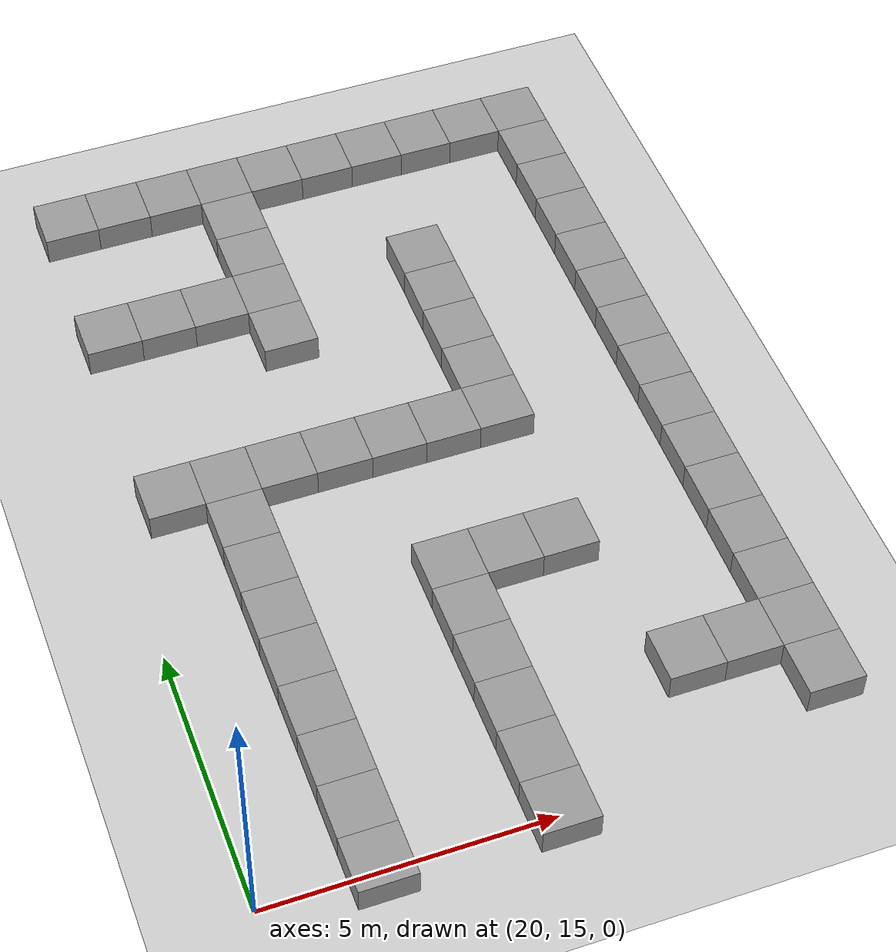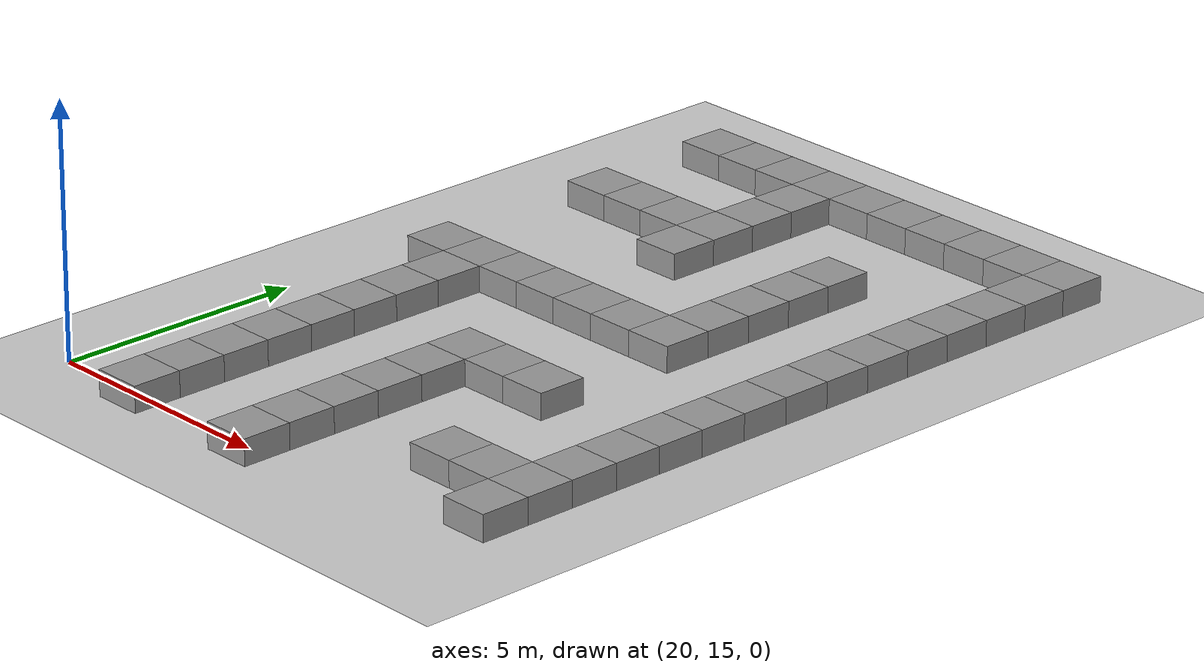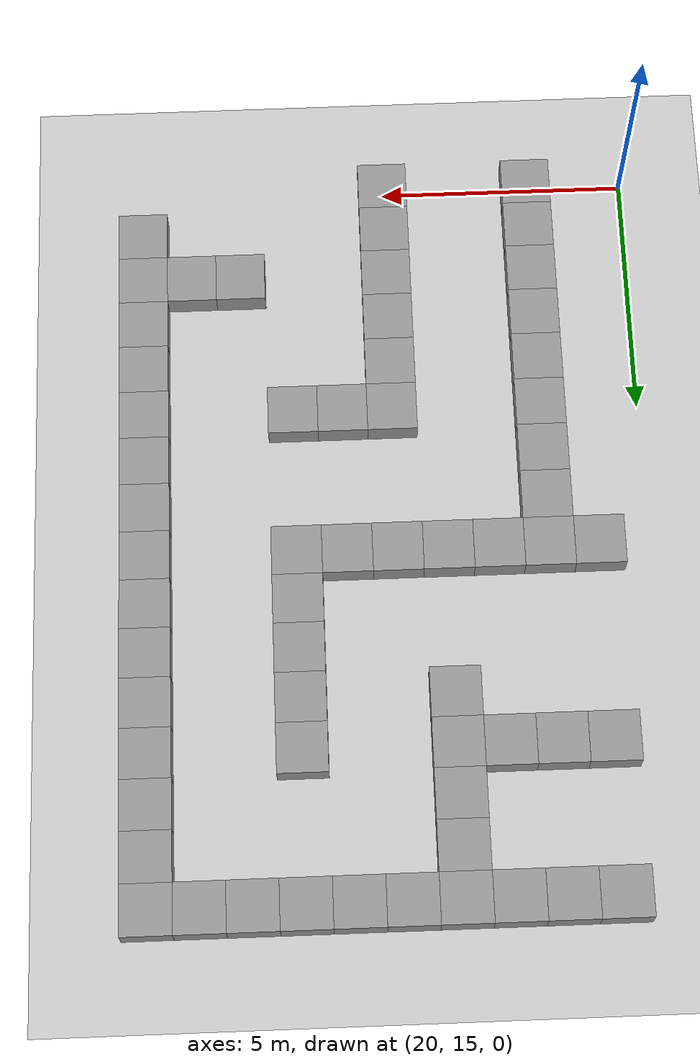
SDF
<sdf version="1.4">
 <world name="default">
  <model name="ground_plane">
   <static>1</static>
   <link name="link">
    <collision name="collision">
     <geometry><plane><normal>0 0 1</normal><size>100 100</size></plane></geometry>
     <surface><friction><ode><mu>100</mu><mu2>50</mu2></ode></friction></surface>
    </collision>
    <visual name="visual">
     <cast_shadows>0</cast_shadows>
     <geometry><plane><normal>0 0 1</normal><size>100 100</size></plane></geometry>
     <material>
      <script><uri>file://media/materials/scripts/gazebo.material</uri><name>Gazebo/Grey</name></script>
     </material>
    </visual>
    <velocity_decay><linear>0</linear><angular>0</angular></velocity_decay>
   </link>
  </model>
  <model name="unit_box_45">
   <pose>30 16 0 0 -0 0</pose>
   <link name="link">
    <inertial>
     <mass>1</mass>
     <inertia><ixx>1</ixx><ixy>0</ixy><ixz>0</ixz><iyy>1</iyy><iyz>0</iyz><izz>1</izz></inertia>
    </inertial>
    <collision name="collision"><geometry><box><size>1 1 1</size></box></geometry></collision>
    <visual name="visual">
     <geometry><box><size>1 1 1</size></box></geometry>
     <material>
      <script><uri>file://media/materials/scripts/gazebo.material</uri><name>Gazebo/Grey</name></script>
     </material>
    </visual>
    <velocity_decay><linear>0</linear><angular>0</angular></velocity_decay>
   </link>
   <static>1</static>
  </model>
  <model name="unit_box_46">
   <pose>30 17 0 0 -0 0</pose>
   <link name="link">
    <inertial>
     <mass>1</mass>
     <inertia><ixx>1</ixx><ixy>0</ixy><ixz>0</ixz><iyy>1</iyy><iyz>0</iyz><izz>1</izz></inertia>
    </inertial>
    <collision name="collision"><geometry><box><size>1 1 1</size></box></geometry></collision>
    <visual name="visual">
     <geometry><box><size>1 1 1</size></box></geometry>
     <material>
      <script><uri>file://media/materials/scripts/gazebo.material</uri><name>Gazebo/Grey</name></script>
     </material>
    </visual>
    <velocity_decay><linear>0</linear><angular>0</angular></velocity_decay>
   </link>
   <static>1</static>
  </model>
  <model name="unit_box_47">
   <pose>30 18 0 0 -0 0</pose>
   <link name="link">
    <inertial>
     <mass>1</mass>
     <inertia><ixx>1</ixx><ixy>0</ixy><ixz>0</ixz><iyy>1</iyy><iyz>0</iyz><izz>1</izz></inertia>
    </inertial>
    <collision name="collision"><geometry><box><size>1 1 1</size></box></geometry></collision>
    <visual name="visual">
     <geometry><box><size>1 1 1</size></box></geometry>
     <material>
      <script><uri>file://media/materials/scripts/gazebo.material</uri><name>Gazebo/Grey</name></script>
     </material>
    </visual>
    <velocity_decay><linear>0</linear><angular>0</angular></velocity_decay>
   </link>
   <static>1</static>
  </model>
  <model name="unit_box_48">
   <pose>30 19 0 0 -0 0</pose>
   <link name="link">
    <inertial>
     <mass>1</mass>
     <inertia><ixx>1</ixx><ixy>0</ixy><ixz>0</ixz><iyy>1</iyy><iyz>0</iyz><izz>1</izz></inertia>
    </inertial>
    <collision name="collision"><geometry><box><size>1 1 1</size></box></geometry></collision>
    <visual name="visual">
     <geometry><box><size>1 1 1</size></box></geometry>
     <material>
      <script><uri>file://media/materials/scripts/gazebo.material</uri><name>Gazebo/Grey</name></script>
     </material>
    </visual>
    <velocity_decay><linear>0</linear><angular>0</angular></velocity_decay>
   </link>
   <static>1</static>
  </model>
  <model name="unit_box_49">
   <pose>30 20 0 0 -0 0</pose>
   <link name="link">
    <inertial>
     <mass>1</mass>
     <inertia><ixx>1</ixx><ixy>0</ixy><ixz>0</ixz><iyy>1</iyy><iyz>0</iyz><izz>1</izz></inertia>
    </inertial>
    <collision name="collision"><geometry><box><size>1 1 1</size></box></geometry></collision>
    <visual name="visual">
     <geometry><box><size>1 1 1</size></box></geometry>
     <material>
      <script><uri>file://media/materials/scripts/gazebo.material</uri><name>Gazebo/Grey</name></script>
     </material>
    </visual>
    <velocity_decay><linear>0</linear><angular>0</angular></velocity_decay>
   </link>
   <static>1</static>
  </model>
  <model name="unit_box_50">
   <pose>30 21 0 0 -0 0</pose>
   <link name="link">
    <inertial>
     <mass>1</mass>
     <inertia><ixx>1</ixx><ixy>0</ixy><ixz>0</ixz><iyy>1</iyy><iyz>0</iyz><izz>1</izz></inertia>
    </inertial>
    <collision name="collision"><geometry><box><size>1 1 1</size></box></geometry></collision>
    <visual name="visual">
     <geometry><box><size>1 1 1</size></box></geometry>
     <material>
      <script><uri>file://media/materials/scripts/gazebo.material</uri><name>Gazebo/Grey</name></script>
     </material>
    </visual>
    <velocity_decay><linear>0</linear><angular>0</angular></velocity_decay>
   </link>
   <static>1</static>
  </model>
  <model name="unit_box_51">
   <pose>30 22 0 0 -0 0</pose>
   <link name="link">
    <inertial>
     <mass>1</mass>
     <inertia><ixx>1</ixx><ixy>0</ixy><ixz>0</ixz><iyy>1</iyy><iyz>0</iyz><izz>1</izz></inertia>
    </inertial>
    <collision name="collision"><geometry><box><size>1 1 1</size></box></geometry></collision>
    <visual name="visual">
     <geometry><box><size>1 1 1</size></box></geometry>
     <material>
      <script><uri>file://media/materials/scripts/gazebo.material</uri><name>Gazebo/Grey</name></script>
     </material>
    </visual>
    <velocity_decay><linear>0</linear><angular>0</angular></velocity_decay>
   </link>
   <static>1</static>
  </model>
  <model name="unit_box_52">
   <pose>30 23 0 0 -0 0</pose>
   <link name="link">
    <inertial>
     <mass>1</mass>
     <inertia><ixx>1</ixx><ixy>0</ixy><ixz>0</ixz><iyy>1</iyy><iyz>0</iyz><izz>1</izz></inertia>
    </inertial>
    <collision name="collision"><geometry><box><size>1 1 1</size></box></geometry></collision>
    <visual name="visual">
     <geometry><box><size>1 1 1</size></box></geometry>
     <material>
      <script><uri>file://media/materials/scripts/gazebo.material</uri><name>Gazebo/Grey</name></script>
     </material>
    </visual>
    <velocity_decay><linear>0</linear><angular>0</angular></velocity_decay>
   </link>
   <static>1</static>
  </model>
  <model name="unit_box_53">
   <pose>30 24 0 0 -0 0</pose>
   <link name="link">
    <inertial>
     <mass>1</mass>
     <inertia><ixx>1</ixx><ixy>0</ixy><ixz>0</ixz><iyy>1</iyy><iyz>0</iyz><izz>1</izz></inertia>
    </inertial>
    <collision name="collision"><geometry><box><size>1 1 1</size></box></geometry></collision>
    <visual name="visual">
     <geometry><box><size>1 1 1</size></box></geometry>
     <material>
      <script><uri>file://media/materials/scripts/gazebo.material</uri><name>Gazebo/Grey</name></script>
     </material>
    </visual>
    <velocity_decay><linear>0</linear><angular>0</angular></velocity_decay>
   </link>
   <static>1</static>
  </model>
  <model name="unit_box_54">
   <pose>30 25 0 0 -0 0</pose>
   <link name="link">
    <inertial>
     <mass>1</mass>
     <inertia><ixx>1</ixx><ixy>0</ixy><ixz>0</ixz><iyy>1</iyy><iyz>0</iyz><izz>1</izz></inertia>
    </inertial>
    <collision name="collision"><geometry><box><size>1 1 1</size></box></geometry></collision>
    <visual name="visual">
     <geometry><box><size>1 1 1</size></box></geometry>
     <material>
      <script><uri>file://media/materials/scripts/gazebo.material</uri><name>Gazebo/Grey</name></script>
     </material>
    </visual>
    <velocity_decay><linear>0</linear><angular>0</angular></velocity_decay>
   </link>
   <static>1</static>
  </model>
  <model name="unit_box_55">
   <pose>30 26 0 0 -0 0</pose>
   <link name="link">
    <inertial>
     <mass>1</mass>
     <inertia><ixx>1</ixx><ixy>0</ixy><ixz>0</ixz><iyy>1</iyy><iyz>0</iyz><izz>1</izz></inertia>
    </inertial>
    <collision name="collision"><geometry><box><size>1 1 1</size></box></geometry></collision>
    <visual name="visual">
     <geometry><box><size>1 1 1</size></box></geometry>
     <material>
      <script><uri>file://media/materials/scripts/gazebo.material</uri><name>Gazebo/Grey</name></script>
     </material>
    </visual>
    <velocity_decay><linear>0</linear><angular>0</angular></velocity_decay>
   </link>
   <static>1</static>
  </model>
  <model name="unit_box_56">
   <pose>30 27 0 0 -0 0</pose>
   <link name="link">
    <inertial>
     <mass>1</mass>
     <inertia><ixx>1</ixx><ixy>0</ixy><ixz>0</ixz><iyy>1</iyy><iyz>0</iyz><izz>1</izz></inertia>
    </inertial>
    <collision name="collision"><geometry><box><size>1 1 1</size></box></geometry></collision>
    <visual name="visual">
     <geometry><box><size>1 1 1</size></box></geometry>
     <material>
      <script><uri>file://media/materials/scripts/gazebo.material</uri><name>Gazebo/Grey</name></script>
     </material>
    </visual>
    <velocity_decay><linear>0</linear><angular>0</angular></velocity_decay>
   </link>
   <static>1</static>
  </model>
  <model name="unit_box_57">
   <pose>30 28 0 0 -0 0</pose>
   <link name="link">
    <inertial>
     <mass>1</mass>
     <inertia><ixx>1</ixx><ixy>0</ixy><ixz>0</ixz><iyy>1</iyy><iyz>0</iyz><izz>1</izz></inertia>
    </inertial>
    <collision name="collision"><geometry><box><size>1 1 1</size></box></geometry></collision>
    <visual name="visual">
     <geometry><box><size>1 1 1</size></box></geometry>
     <material>
      <script><uri>file://media/materials/scripts/gazebo.material</uri><name>Gazebo/Grey</name></script>
     </material>
    </visual>
    <velocity_decay><linear>0</linear><angular>0</angular></velocity_decay>
   </link>
   <static>1</static>
  </model>
  <model name="unit_box_58">
   <pose>30 29 0 0 -0 0</pose>
   <link name="link">
    <inertial>
     <mass>1</mass>
     <inertia><ixx>1</ixx><ixy>0</ixy><ixz>0</ixz><iyy>1</iyy><iyz>0</iyz><izz>1</izz></inertia>
    </inertial>
    <collision name="collision"><geometry><box><size>1 1 1</size></box></geometry></collision>
    <visual name="visual">
     <geometry><box><size>1 1 1</size></box></geometry>
     <material>
      <script><uri>file://media/materials/scripts/gazebo.material</uri><name>Gazebo/Grey</name></script>
     </material>
    </visual>
    <velocity_decay><linear>0</linear><angular>0</angular></velocity_decay>
   </link>
   <static>1</static>
  </model>
  <model name="unit_box_59">
   <pose>30 30 0 0 -0 0</pose>
   <link name="link">
    <inertial>
     <mass>1</mass>
     <inertia><ixx>1</ixx><ixy>0</ixy><ixz>0</ixz><iyy>1</iyy><iyz>0</iyz><izz>1</izz></inertia>
    </inertial>
    <collision name="collision"><geometry><box><size>1 1 1</size></box></geometry></collision>
    <visual name="visual">
     <geometry><box><size>1 1 1</size></box></geometry>
     <material>
      <script><uri>file://media/materials/scripts/gazebo.material</uri><name>Gazebo/Grey</name></script>
     </material>
    </visual>
    <velocity_decay><linear>0</linear><angular>0</angular></velocity_decay>
   </link>
   <static>1</static>
  </model>
  <model name="unit_box_78">
   <pose>21 30 0 0 -0 0</pose>
   <link name="link">
    <inertial>
     <mass>1</mass>
     <inertia><ixx>1</ixx><ixy>0</ixy><ixz>0</ixz><iyy>1</iyy><iyz>0</iyz><izz>1</izz></inertia>
    </inertial>
    <collision name="collision"><geometry><box><size>1 1 1</size></box></geometry></collision>
    <visual name="visual">
     <geometry><box><size>1 1 1</size></box></geometry>
     <material>
      <script><uri>file://media/materials/scripts/gazebo.material</uri><name>Gazebo/Grey</name></script>
     </material>
    </visual>
    <velocity_decay><linear>0</linear><angular>0</angular></velocity_decay>
   </link>
   <static>1</static>
  </model>
  <model name="unit_box_79">
   <pose>22 30 0 0 -0 0</pose>
   <link name="link">
    <inertial>
     <mass>1</mass>
     <inertia><ixx>1</ixx><ixy>0</ixy><ixz>0</ixz><iyy>1</iyy><iyz>0</iyz><izz>1</izz></inertia>
    </inertial>
    <collision name="collision"><geometry><box><size>1 1 1</size></box></geometry></collision>
    <visual name="visual">
     <geometry><box><size>1 1 1</size></box></geometry>
     <material>
      <script><uri>file://media/materials/scripts/gazebo.material</uri><name>Gazebo/Grey</name></script>
     </material>
    </visual>
    <velocity_decay><linear>0</linear><angular>0</angular></velocity_decay>
   </link>
   <static>1</static>
  </model>
  <model name="unit_box_80">
   <pose>23 30 0 0 -0 0</pose>
   <link name="link">
    <inertial>
     <mass>1</mass>
     <inertia><ixx>1</ixx><ixy>0</ixy><ixz>0</ixz><iyy>1</iyy><iyz>0</iyz><izz>1</izz></inertia>
    </inertial>
    <collision name="collision"><geometry><box><size>1 1 1</size></box></geometry></collision>
    <visual name="visual">
     <geometry><box><size>1 1 1</size></box></geometry>
     <material>
      <script><uri>file://media/materials/scripts/gazebo.material</uri><name>Gazebo/Grey</name></script>
     </material>
    </visual>
    <velocity_decay><linear>0</linear><angular>0</angular></velocity_decay>
   </link>
   <static>1</static>
  </model>
  <model name="unit_box_81">
   <pose>24 30 0 0 -0 0</pose>
   <link name="link">
    <inertial>
     <mass>1</mass>
     <inertia><ixx>1</ixx><ixy>0</ixy><ixz>0</ixz><iyy>1</iyy><iyz>0</iyz><izz>1</izz></inertia>
    </inertial>
    <collision name="collision"><geometry><box><size>1 1 1</size></box></geometry></collision>
    <visual name="visual">
     <geometry><box><size>1 1 1</size></box></geometry>
     <material>
      <script><uri>file://media/materials/scripts/gazebo.material</uri><name>Gazebo/Grey</name></script>
     </material>
    </visual>
    <velocity_decay><linear>0</linear><angular>0</angular></velocity_decay>
   </link>
   <static>1</static>
  </model>
  <model name="unit_box_82">
   <pose>25 30 0 0 -0 0</pose>
   <link name="link">
    <inertial>
     <mass>1</mass>
     <inertia><ixx>1</ixx><ixy>0</ixy><ixz>0</ixz><iyy>1</iyy><iyz>0</iyz><izz>1</izz></inertia>
    </inertial>
    <collision name="collision"><geometry><box><size>1 1 1</size></box></geometry></collision>
    <visual name="visual">
     <geometry><box><size>1 1 1</size></box></geometry>
     <material>
      <script><uri>file://media/materials/scripts/gazebo.material</uri><name>Gazebo/Grey</name></script>
     </material>
    </visual>
    <velocity_decay><linear>0</linear><angular>0</angular></velocity_decay>
   </link>
   <static>1</static>
  </model>
  <model name="unit_box_83">
   <pose>26 30 0 0 -0 0</pose>
   <link name="link">
    <inertial>
     <mass>1</mass>
     <inertia><ixx>1</ixx><ixy>0</ixy><ixz>0</ixz><iyy>1</iyy><iyz>0</iyz><izz>1</izz></inertia>
    </inertial>
    <collision name="collision"><geometry><box><size>1 1 1</size></box></geometry></collision>
    <visual name="visual">
     <geometry><box><size>1 1 1</size></box></geometry>
     <material>
      <script><uri>file://media/materials/scripts/gazebo.material</uri><name>Gazebo/Grey</name></script>
     </material>
    </visual>
    <velocity_decay><linear>0</linear><angular>0</angular></velocity_decay>
   </link>
   <static>1</static>
  </model>
  <model name="unit_box_84">
   <pose>27 30 0 0 -0 0</pose>
   <link name="link">
    <inertial>
     <mass>1</mass>
     <inertia><ixx>1</ixx><ixy>0</ixy><ixz>0</ixz><iyy>1</iyy><iyz>0</iyz><izz>1</izz></inertia>
    </inertial>
    <collision name="collision"><geometry><box><size>1 1 1</size></box></geometry></collision>
    <visual name="visual">
     <geometry><box><size>1 1 1</size></box></geometry>
     <material>
      <script><uri>file://media/materials/scripts/gazebo.material</uri><name>Gazebo/Grey</name></script>
     </material>
    </visual>
    <velocity_decay><linear>0</linear><angular>0</angular></velocity_decay>
   </link>
   <static>1</static>
  </model>
  <model name="unit_box_85">
   <pose>28 30 0 0 -0 0</pose>
   <link name="link">
    <inertial>
     <mass>1</mass>
     <inertia><ixx>1</ixx><ixy>0</ixy><ixz>0</ixz><iyy>1</iyy><iyz>0</iyz><izz>1</izz></inertia>
    </inertial>
    <collision name="collision"><geometry><box><size>1 1 1</size></box></geometry></collision>
    <visual name="visual">
     <geometry><box><size>1 1 1</size></box></geometry>
     <material>
      <script><uri>file://media/materials/scripts/gazebo.material</uri><name>Gazebo/Grey</name></script>
     </material>
    </visual>
    <velocity_decay><linear>0</linear><angular>0</angular></velocity_decay>
   </link>
   <static>1</static>
  </model>
  <model name="unit_box_86">
   <pose>29 30 0 0 -0 0</pose>
   <link name="link">
    <inertial>
     <mass>1</mass>
     <inertia><ixx>1</ixx><ixy>0</ixy><ixz>0</ixz><iyy>1</iyy><iyz>0</iyz><izz>1</izz></inertia>
    </inertial>
    <collision name="collision"><geometry><box><size>1 1 1</size></box></geometry></collision>
    <visual name="visual">
     <geometry><box><size>1 1 1</size></box></geometry>
     <material>
      <script><uri>file://media/materials/scripts/gazebo.material</uri><name>Gazebo/Grey</name></script>
     </material>
    </visual>
    <velocity_decay><linear>0</linear><angular>0</angular></velocity_decay>
   </link>
   <static>1</static>
  </model>
  <model name="unit_box_87">
   <pose>30 30 0 0 -0 0</pose>
   <link name="link">
    <inertial>
     <mass>1</mass>
     <inertia><ixx>1</ixx><ixy>0</ixy><ixz>0</ixz><iyy>1</iyy><iyz>0</iyz><izz>1</izz></inertia>
    </inertial>
    <collision name="collision"><geometry><box><size>1 1 1</size></box></geometry></collision>
    <visual name="visual">
     <geometry><box><size>1 1 1</size></box></geometry>
     <material>
      <script><uri>file://media/materials/scripts/gazebo.material</uri><name>Gazebo/Grey</name></script>
     </material>
    </visual>
    <velocity_decay><linear>0</linear><angular>0</angular></velocity_decay>
   </link>
   <static>1</static>
  </model>
  <model name="unit_box_303">
   <pose>22 15 0 0 -0 0</pose>
   <link name="link">
    <inertial>
     <mass>1</mass>
     <inertia><ixx>1</ixx><ixy>0</ixy><ixz>0</ixz><iyy>1</iyy><iyz>0</iyz><izz>1</izz></inertia>
    </inertial>
    <collision name="collision"><geometry><box><size>1 1 1</size></box></geometry></collision>
    <visual name="visual">
     <geometry><box><size>1 1 1</size></box></geometry>
     <material>
      <script><uri>file://media/materials/scripts/gazebo.material</uri><name>Gazebo/Grey</name></script>
     </material>
    </visual>
    <velocity_decay><linear>0</linear><angular>0</angular></velocity_decay>
   </link>
   <static>1</static>
  </model>
  <model name="unit_box_304">
   <pose>22 16 0 0 -0 0</pose>
   <link name="link">
    <inertial>
     <mass>1</mass>
     <inertia><ixx>1</ixx><ixy>0</ixy><ixz>0</ixz><iyy>1</iyy><iyz>0</iyz><izz>1</izz></inertia>
    </inertial>
    <collision name="collision"><geometry><box><size>1 1 1</size></box></geometry></collision>
    <visual name="visual">
     <geometry><box><size>1 1 1</size></box></geometry>
     <material>
      <script><uri>file://media/materials/scripts/gazebo.material</uri><name>Gazebo/Grey</name></script>
     </material>
    </visual>
    <velocity_decay><linear>0</linear><angular>0</angular></velocity_decay>
   </link>
   <static>1</static>
  </model>
  <model name="unit_box_305">
   <pose>22 17 0 0 -0 0</pose>
   <link name="link">
    <inertial>
     <mass>1</mass>
     <inertia><ixx>1</ixx><ixy>0</ixy><ixz>0</ixz><iyy>1</iyy><iyz>0</iyz><izz>1</izz></inertia>
    </inertial>
    <collision name="collision"><geometry><box><size>1 1 1</size></box></geometry></collision>
    <visual name="visual">
     <geometry><box><size>1 1 1</size></box></geometry>
     <material>
      <script><uri>file://media/materials/scripts/gazebo.material</uri><name>Gazebo/Grey</name></script>
     </material>
    </visual>
    <velocity_decay><linear>0</linear><angular>0</angular></velocity_decay>
   </link>
   <static>1</static>
  </model>
  <model name="unit_box_306">
   <pose>22 18 0 0 -0 0</pose>
   <link name="link">
    <inertial>
     <mass>1</mass>
     <inertia><ixx>1</ixx><ixy>0</ixy><ixz>0</ixz><iyy>1</iyy><iyz>0</iyz><izz>1</izz></inertia>
    </inertial>
    <collision name="collision"><geometry><box><size>1 1 1</size></box></geometry></collision>
    <visual name="visual">
     <geometry><box><size>1 1 1</size></box></geometry>
     <material>
      <script><uri>file://media/materials/scripts/gazebo.material</uri><name>Gazebo/Grey</name></script>
     </material>
    </visual>
    <velocity_decay><linear>0</linear><angular>0</angular></velocity_decay>
   </link>
   <static>1</static>
  </model>
  <model name="unit_box_307">
   <pose>22 19 0 0 -0 0</pose>
   <link name="link">
    <inertial>
     <mass>1</mass>
     <inertia><ixx>1</ixx><ixy>0</ixy><ixz>0</ixz><iyy>1</iyy><iyz>0</iyz><izz>1</izz></inertia>
    </inertial>
    <collision name="collision"><geometry><box><size>1 1 1</size></box></geometry></collision>
    <visual name="visual">
     <geometry><box><size>1 1 1</size></box></geometry>
     <material>
      <script><uri>file://media/materials/scripts/gazebo.material</uri><name>Gazebo/Grey</name></script>
     </material>
    </visual>
    <velocity_decay><linear>0</linear><angular>0</angular></velocity_decay>
   </link>
   <static>1</static>
  </model>
  <model name="unit_box_308">
   <pose>22 20 0 0 -0 0</pose>
   <link name="link">
    <inertial>
     <mass>1</mass>
     <inertia><ixx>1</ixx><ixy>0</ixy><ixz>0</ixz><iyy>1</iyy><iyz>0</iyz><izz>1</izz></inertia>
    </inertial>
    <collision name="collision"><geometry><box><size>1 1 1</size></box></geometry></collision>
    <visual name="visual">
     <geometry><box><size>1 1 1</size></box></geometry>
     <material>
      <script><uri>file://media/materials/scripts/gazebo.material</uri><name>Gazebo/Grey</name></script>
     </material>
    </visual>
    <velocity_decay><linear>0</linear><angular>0</angular></velocity_decay>
   </link>
   <static>1</static>
  </model>
  <model name="unit_box_309">
   <pose>22 21 0 0 -0 0</pose>
   <link name="link">
    <inertial>
     <mass>1</mass>
     <inertia><ixx>1</ixx><ixy>0</ixy><ixz>0</ixz><iyy>1</iyy><iyz>0</iyz><izz>1</izz></inertia>
    </inertial>
    <collision name="collision"><geometry><box><size>1 1 1</size></box></geometry></collision>
    <visual name="visual">
     <geometry><box><size>1 1 1</size></box></geometry>
     <material>
      <script><uri>file://media/materials/scripts/gazebo.material</uri><name>Gazebo/Grey</name></script>
     </material>
    </visual>
    <velocity_decay><linear>0</linear><angular>0</angular></velocity_decay>
   </link>
   <static>1</static>
  </model>
  <model name="unit_box_310">
   <pose>22 22 0 0 -0 0</pose>
   <link name="link">
    <inertial>
     <mass>1</mass>
     <inertia><ixx>1</ixx><ixy>0</ixy><ixz>0</ixz><iyy>1</iyy><iyz>0</iyz><izz>1</izz></inertia>
    </inertial>
    <collision name="collision"><geometry><box><size>1 1 1</size></box></geometry></collision>
    <visual name="visual">
     <geometry><box><size>1 1 1</size></box></geometry>
     <material>
      <script><uri>file://media/materials/scripts/gazebo.material</uri><name>Gazebo/Grey</name></script>
     </material>
    </visual>
    <velocity_decay><linear>0</linear><angular>0</angular></velocity_decay>
   </link>
   <static>1</static>
  </model>
  <model name="unit_box_311">
   <pose>22 23 0 0 -0 0</pose>
   <link name="link">
    <inertial>
     <mass>1</mass>
     <inertia><ixx>1</ixx><ixy>0</ixy><ixz>0</ixz><iyy>1</iyy><iyz>0</iyz><izz>1</izz></inertia>
    </inertial>
    <collision name="collision"><geometry><box><size>1 1 1</size></box></geometry></collision>
    <visual name="visual">
     <geometry><box><size>1 1 1</size></box></geometry>
     <material>
      <script><uri>file://media/materials/scripts/gazebo.material</uri><name>Gazebo/Grey</name></script>
     </material>
    </visual>
    <velocity_decay><linear>0</linear><angular>0</angular></velocity_decay>
   </link>
   <static>1</static>
  </model>
  <model name="unit_box_312">
   <pose>21 23 0 0 -0 0</pose>
   <link name="link">
    <inertial>
     <mass>1</mass>
     <inertia><ixx>1</ixx><ixy>0</ixy><ixz>0</ixz><iyy>1</iyy><iyz>0</iyz><izz>1</izz></inertia>
    </inertial>
    <collision name="collision"><geometry><box><size>1 1 1</size></box></geometry></collision>
    <visual name="visual">
     <geometry><box><size>1 1 1</size></box></geometry>
     <material>
      <script><uri>file://media/materials/scripts/gazebo.material</uri><name>Gazebo/Grey</name></script>
     </material>
    </visual>
    <velocity_decay><linear>0</linear><angular>0</angular></velocity_decay>
   </link>
   <static>1</static>
  </model>
  <model name="unit_box_321">
   <pose>25 15 0 0 -0 0</pose>
   <link name="link">
    <inertial>
     <mass>1</mass>
     <inertia><ixx>1</ixx><ixy>0</ixy><ixz>0</ixz><iyy>1</iyy><iyz>0</iyz><izz>1</izz></inertia>
    </inertial>
    <collision name="collision"><geometry><box><size>1 1 1</size></box></geometry></collision>
    <visual name="visual">
     <geometry><box><size>1 1 1</size></box></geometry>
     <material>
      <script><uri>file://media/materials/scripts/gazebo.material</uri><name>Gazebo/Grey</name></script>
     </material>
    </visual>
    <velocity_decay><linear>0</linear><angular>0</angular></velocity_decay>
   </link>
   <static>1</static>
  </model>
  <model name="unit_box_322">
   <pose>25 16 0 0 -0 0</pose>
   <link name="link">
    <inertial>
     <mass>1</mass>
     <inertia><ixx>1</ixx><ixy>0</ixy><ixz>0</ixz><iyy>1</iyy><iyz>0</iyz><izz>1</izz></inertia>
    </inertial>
    <collision name="collision"><geometry><box><size>1 1 1</size></box></geometry></collision>
    <visual name="visual">
     <geometry><box><size>1 1 1</size></box></geometry>
     <material>
      <script><uri>file://media/materials/scripts/gazebo.material</uri><name>Gazebo/Grey</name></script>
     </material>
    </visual>
    <velocity_decay><linear>0</linear><angular>0</angular></velocity_decay>
   </link>
   <static>1</static>
  </model>
  <model name="unit_box_323">
   <pose>25 17 0 0 -0 0</pose>
   <link name="link">
    <inertial>
     <mass>1</mass>
     <inertia><ixx>1</ixx><ixy>0</ixy><ixz>0</ixz><iyy>1</iyy><iyz>0</iyz><izz>1</izz></inertia>
    </inertial>
    <collision name="collision"><geometry><box><size>1 1 1</size></box></geometry></collision>
    <visual name="visual">
     <geometry><box><size>1 1 1</size></box></geometry>
     <material>
      <script><uri>file://media/materials/scripts/gazebo.material</uri><name>Gazebo/Grey</name></script>
     </material>
    </visual>
    <velocity_decay><linear>0</linear><angular>0</angular></velocity_decay>
   </link>
   <static>1</static>
  </model>
  <model name="unit_box_324">
   <pose>25 18 0 0 -0 0</pose>
   <link name="link">
    <inertial>
     <mass>1</mass>
     <inertia><ixx>1</ixx><ixy>0</ixy><ixz>0</ixz><iyy>1</iyy><iyz>0</iyz><izz>1</izz></inertia>
    </inertial>
    <collision name="collision"><geometry><box><size>1 1 1</size></box></geometry></collision>
    <visual name="visual">
     <geometry><box><size>1 1 1</size></box></geometry>
     <material>
      <script><uri>file://media/materials/scripts/gazebo.material</uri><name>Gazebo/Grey</name></script>
     </material>
    </visual>
    <velocity_decay><linear>0</linear><angular>0</angular></velocity_decay>
   </link>
   <static>1</static>
  </model>
  <model name="unit_box_325">
   <pose>25 19 0 0 -0 0</pose>
   <link name="link">
    <inertial>
     <mass>1</mass>
     <inertia><ixx>1</ixx><ixy>0</ixy><ixz>0</ixz><iyy>1</iyy><iyz>0</iyz><izz>1</izz></inertia>
    </inertial>
    <collision name="collision"><geometry><box><size>1 1 1</size></box></geometry></collision>
    <visual name="visual">
     <geometry><box><size>1 1 1</size></box></geometry>
     <material>
      <script><uri>file://media/materials/scripts/gazebo.material</uri><name>Gazebo/Grey</name></script>
     </material>
    </visual>
    <velocity_decay><linear>0</linear><angular>0</angular></velocity_decay>
   </link>
   <static>1</static>
  </model>
  <model name="unit_box_326">
   <pose>25 20 0 0 -0 0</pose>
   <link name="link">
    <inertial>
     <mass>1</mass>
     <inertia><ixx>1</ixx><ixy>0</ixy><ixz>0</ixz><iyy>1</iyy><iyz>0</iyz><izz>1</izz></inertia>
    </inertial>
    <collision name="collision"><geometry><box><size>1 1 1</size></box></geometry></collision>
    <visual name="visual">
     <geometry><box><size>1 1 1</size></box></geometry>
     <material>
      <script><uri>file://media/materials/scripts/gazebo.material</uri><name>Gazebo/Grey</name></script>
     </material>
    </visual>
    <velocity_decay><linear>0</linear><angular>0</angular></velocity_decay>
   </link>
   <static>1</static>
  </model>
  <model name="unit_box_327">
   <pose>26 20 0 0 -0 0</pose>
   <link name="link">
    <inertial>
     <mass>1</mass>
     <inertia><ixx>1</ixx><ixy>0</ixy><ixz>0</ixz><iyy>1</iyy><iyz>0</iyz><izz>1</izz></inertia>
    </inertial>
    <collision name="collision"><geometry><box><size>1 1 1</size></box></geometry></collision>
    <visual name="visual">
     <geometry><box><size>1 1 1</size></box></geometry>
     <material>
      <script><uri>file://media/materials/scripts/gazebo.material</uri><name>Gazebo/Grey</name></script>
     </material>
    </visual>
    <velocity_decay><linear>0</linear><angular>0</angular></velocity_decay>
   </link>
   <static>1</static>
  </model>
  <model name="unit_box_328">
   <pose>23 23 0 0 -0 0</pose>
   <link name="link">
    <inertial>
     <mass>1</mass>
     <inertia><ixx>1</ixx><ixy>0</ixy><ixz>0</ixz><iyy>1</iyy><iyz>0</iyz><izz>1</izz></inertia>
    </inertial>
    <collision name="collision"><geometry><box><size>1 1 1</size></box></geometry></collision>
    <visual name="visual">
     <geometry><box><size>1 1 1</size></box></geometry>
     <material>
      <script><uri>file://media/materials/scripts/gazebo.material</uri><name>Gazebo/Grey</name></script>
     </material>
    </visual>
    <velocity_decay><linear>0</linear><angular>0</angular></velocity_decay>
   </link>
   <static>1</static>
  </model>
  <model name="unit_box_329">
   <pose>24 23 0 0 -0 0</pose>
   <link name="link">
    <inertial>
     <mass>1</mass>
     <inertia><ixx>1</ixx><ixy>0</ixy><ixz>0</ixz><iyy>1</iyy><iyz>0</iyz><izz>1</izz></inertia>
    </inertial>
    <collision name="collision"><geometry><box><size>1 1 1</size></box></geometry></collision>
    <visual name="visual">
     <geometry><box><size>1 1 1</size></box></geometry>
     <material>
      <script><uri>file://media/materials/scripts/gazebo.material</uri><name>Gazebo/Grey</name></script>
     </material>
    </visual>
    <velocity_decay><linear>0</linear><angular>0</angular></velocity_decay>
   </link>
   <static>1</static>
  </model>
  <model name="unit_box_330">
   <pose>25 23 0 0 -0 0</pose>
   <link name="link">
    <inertial>
     <mass>1</mass>
     <inertia><ixx>1</ixx><ixy>0</ixy><ixz>0</ixz><iyy>1</iyy><iyz>0</iyz><izz>1</izz></inertia>
    </inertial>
    <collision name="collision"><geometry><box><size>1 1 1</size></box></geometry></collision>
    <visual name="visual">
     <geometry><box><size>1 1 1</size></box></geometry>
     <material>
      <script><uri>file://media/materials/scripts/gazebo.material</uri><name>Gazebo/Grey</name></script>
     </material>
    </visual>
    <velocity_decay><linear>0</linear><angular>0</angular></velocity_decay>
   </link>
   <static>1</static>
  </model>
  <model name="unit_box_331">
   <pose>26 23 0 0 -0 0</pose>
   <link name="link">
    <inertial>
     <mass>1</mass>
     <inertia><ixx>1</ixx><ixy>0</ixy><ixz>0</ixz><iyy>1</iyy><iyz>0</iyz><izz>1</izz></inertia>
    </inertial>
    <collision name="collision"><geometry><box><size>1 1 1</size></box></geometry></collision>
    <visual name="visual">
     <geometry><box><size>1 1 1</size></box></geometry>
     <material>
      <script><uri>file://media/materials/scripts/gazebo.material</uri><name>Gazebo/Grey</name></script>
     </material>
    </visual>
    <velocity_decay><linear>0</linear><angular>0</angular></velocity_decay>
   </link>
   <static>1</static>
  </model>
  <model name="unit_box_332">
   <pose>27 23 0 0 -0 0</pose>
   <link name="link">
    <inertial>
     <mass>1</mass>
     <inertia><ixx>1</ixx><ixy>0</ixy><ixz>0</ixz><iyy>1</iyy><iyz>0</iyz><izz>1</izz></inertia>
    </inertial>
    <collision name="collision"><geometry><box><size>1 1 1</size></box></geometry></collision>
    <visual name="visual">
     <geometry><box><size>1 1 1</size></box></geometry>
     <material>
      <script><uri>file://media/materials/scripts/gazebo.material</uri><name>Gazebo/Grey</name></script>
     </material>
    </visual>
    <velocity_decay><linear>0</linear><angular>0</angular></velocity_decay>
   </link>
   <static>1</static>
  </model>
  <model name="unit_box_333">
   <pose>27 20 0 0 -0 0</pose>
   <link name="link">
    <inertial>
     <mass>1</mass>
     <inertia><ixx>1</ixx><ixy>0</ixy><ixz>0</ixz><iyy>1</iyy><iyz>0</iyz><izz>1</izz></inertia>
    </inertial>
    <collision name="collision"><geometry><box><size>1 1 1</size></box></geometry></collision>
    <visual name="visual">
     <geometry><box><size>1 1 1</size></box></geometry>
     <material>
      <script><uri>file://media/materials/scripts/gazebo.material</uri><name>Gazebo/Grey</name></script>
     </material>
    </visual>
    <velocity_decay><linear>0</linear><angular>0</angular></velocity_decay>
   </link>
   <static>1</static>
  </model>
  <model name="unit_box_334">
   <pose>29 17 0 0 -0 0</pose>
   <link name="link">
    <inertial>
     <mass>1</mass>
     <inertia><ixx>1</ixx><ixy>0</ixy><ixz>0</ixz><iyy>1</iyy><iyz>0</iyz><izz>1</izz></inertia>
    </inertial>
    <collision name="collision"><geometry><box><size>1 1 1</size></box></geometry></collision>
    <visual name="visual">
     <geometry><box><size>1 1 1</size></box></geometry>
     <material>
      <script><uri>file://media/materials/scripts/gazebo.material</uri><name>Gazebo/Grey</name></script>
     </material>
    </visual>
    <velocity_decay><linear>0</linear><angular>0</angular></velocity_decay>
   </link>
   <static>1</static>
  </model>
  <model name="unit_box_335">
   <pose>28 17 0 0 -0 0</pose>
   <link name="link">
    <inertial>
     <mass>1</mass>
     <inertia><ixx>1</ixx><ixy>0</ixy><ixz>0</ixz><iyy>1</iyy><iyz>0</iyz><izz>1</izz></inertia>
    </inertial>
    <collision name="collision"><geometry><box><size>1 1 1</size></box></geometry></collision>
    <visual name="visual">
     <geometry><box><size>1 1 1</size></box></geometry>
     <material>
      <script><uri>file://media/materials/scripts/gazebo.material</uri><name>Gazebo/Grey</name></script>
     </material>
    </visual>
    <velocity_decay><linear>0</linear><angular>0</angular></velocity_decay>
   </link>
   <static>1</static>
  </model>
  <model name="unit_box_336">
   <pose>27 24 0 0 -0 0</pose>
   <link name="link">
    <inertial>
     <mass>1</mass>
     <inertia><ixx>1</ixx><ixy>0</ixy><ixz>0</ixz><iyy>1</iyy><iyz>0</iyz><izz>1</izz></inertia>
    </inertial>
    <collision name="collision"><geometry><box><size>1 1 1</size></box></geometry></collision>
    <visual name="visual">
     <geometry><box><size>1 1 1</size></box></geometry>
     <material>
      <script><uri>file://media/materials/scripts/gazebo.material</uri><name>Gazebo/Grey</name></script>
     </material>
    </visual>
    <velocity_decay><linear>0</linear><angular>0</angular></velocity_decay>
   </link>
   <static>1</static>
  </model>
  <model name="unit_box_337">
   <pose>27 25 0 0 -0 0</pose>
   <link name="link">
    <inertial>
     <mass>1</mass>
     <inertia><ixx>1</ixx><ixy>0</ixy><ixz>0</ixz><iyy>1</iyy><iyz>0</iyz><izz>1</izz></inertia>
    </inertial>
    <collision name="collision"><geometry><box><size>1 1 1</size></box></geometry></collision>
    <visual name="visual">
     <geometry><box><size>1 1 1</size></box></geometry>
     <material>
      <script><uri>file://media/materials/scripts/gazebo.material</uri><name>Gazebo/Grey</name></script>
     </material>
    </visual>
    <velocity_decay><linear>0</linear><angular>0</angular></velocity_decay>
   </link>
   <static>1</static>
  </model>
  <model name="unit_box_338">
   <pose>27 26 0 0 -0 0</pose>
   <link name="link">
    <inertial>
     <mass>1</mass>
     <inertia><ixx>1</ixx><ixy>0</ixy><ixz>0</ixz><iyy>1</iyy><iyz>0</iyz><izz>1</izz></inertia>
    </inertial>
    <collision name="collision"><geometry><box><size>1 1 1</size></box></geometry></collision>
    <visual name="visual">
     <geometry><box><size>1 1 1</size></box></geometry>
     <material>
      <script><uri>file://media/materials/scripts/gazebo.material</uri><name>Gazebo/Grey</name></script>
     </material>
    </visual>
    <velocity_decay><linear>0</linear><angular>0</angular></velocity_decay>
   </link>
   <static>1</static>
  </model>
  <model name="unit_box_339">
   <pose>27 27 0 0 -0 0</pose>
   <link name="link">
    <inertial>
     <mass>1</mass>
     <inertia><ixx>1</ixx><ixy>0</ixy><ixz>0</ixz><iyy>1</iyy><iyz>0</iyz><izz>1</izz></inertia>
    </inertial>
    <collision name="collision"><geometry><box><size>1 1 1</size></box></geometry></collision>
    <visual name="visual">
     <geometry><box><size>1 1 1</size></box></geometry>
     <material>
      <script><uri>file://media/materials/scripts/gazebo.material</uri><name>Gazebo/Grey</name></script>
     </material>
    </visual>
    <velocity_decay><linear>0</linear><angular>0</angular></velocity_decay>
   </link>
   <static>1</static>
  </model>
  <model name="unit_box_340">
   <pose>24 29 0 0 -0 0</pose>
   <link name="link">
    <inertial>
     <mass>1</mass>
     <inertia><ixx>1</ixx><ixy>0</ixy><ixz>0</ixz><iyy>1</iyy><iyz>0</iyz><izz>1</izz></inertia>
    </inertial>
    <collision name="collision"><geometry><box><size>1 1 1</size></box></geometry></collision>
    <visual name="visual">
     <geometry><box><size>1 1 1</size></box></geometry>
     <material>
      <script><uri>file://media/materials/scripts/gazebo.material</uri><name>Gazebo/Grey</name></script>
     </material>
    </visual>
    <velocity_decay><linear>0</linear><angular>0</angular></velocity_decay>
   </link>
   <static>1</static>
  </model>
  <model name="unit_box_341">
   <pose>24 28 0 0 -0 0</pose>
   <link name="link">
    <inertial>
     <mass>1</mass>
     <inertia><ixx>1</ixx><ixy>0</ixy><ixz>0</ixz><iyy>1</iyy><iyz>0</iyz><izz>1</izz></inertia>
    </inertial>
    <collision name="collision"><geometry><box><size>1 1 1</size></box></geometry></collision>
    <visual name="visual">
     <geometry><box><size>1 1 1</size></box></geometry>
     <material>
      <script><uri>file://media/materials/scripts/gazebo.material</uri><name>Gazebo/Grey</name></script>
     </material>
    </visual>
    <velocity_decay><linear>0</linear><angular>0</angular></velocity_decay>
   </link>
   <static>1</static>
  </model>
  <model name="unit_box_342">
   <pose>24 27 0 0 -0 0</pose>
   <link name="link">
    <inertial>
     <mass>1</mass>
     <inertia><ixx>1</ixx><ixy>0</ixy><ixz>0</ixz><iyy>1</iyy><iyz>0</iyz><izz>1</izz></inertia>
    </inertial>
    <collision name="collision"><geometry><box><size>1 1 1</size></box></geometry></collision>
    <visual name="visual">
     <geometry><box><size>1 1 1</size></box></geometry>
     <material>
      <script><uri>file://media/materials/scripts/gazebo.material</uri><name>Gazebo/Grey</name></script>
     </material>
    </visual>
    <velocity_decay><linear>0</linear><angular>0</angular></velocity_decay>
   </link>
   <static>1</static>
  </model>
  <model name="unit_box_343">
   <pose>24 26 0 0 -0 0</pose>
   <link name="link">
    <inertial>
     <mass>1</mass>
     <inertia><ixx>1</ixx><ixy>0</ixy><ixz>0</ixz><iyy>1</iyy><iyz>0</iyz><izz>1</izz></inertia>
    </inertial>
    <collision name="collision"><geometry><box><size>1 1 1</size></box></geometry></collision>
    <visual name="visual">
     <geometry><box><size>1 1 1</size></box></geometry>
     <material>
      <script><uri>file://media/materials/scripts/gazebo.material</uri><name>Gazebo/Grey</name></script>
     </material>
    </visual>
    <velocity_decay><linear>0</linear><angular>0</angular></velocity_decay>
   </link>
   <static>1</static>
  </model>
  <model name="unit_box_344">
   <pose>21 27 0 0 -0 0</pose>
   <link name="link">
    <inertial>
     <mass>1</mass>
     <inertia><ixx>1</ixx><ixy>0</ixy><ixz>0</ixz><iyy>1</iyy><iyz>0</iyz><izz>1</izz></inertia>
    </inertial>
    <collision name="collision"><geometry><box><size>1 1 1</size></box></geometry></collision>
    <visual name="visual">
     <geometry><box><size>1 1 1</size></box></geometry>
     <material>
      <script><uri>file://media/materials/scripts/gazebo.material</uri><name>Gazebo/Grey</name></script>
     </material>
    </visual>
    <velocity_decay><linear>0</linear><angular>0</angular></velocity_decay>
   </link>
   <static>1</static>
  </model>
  <model name="unit_box_345">
   <pose>22 27 0 0 -0 0</pose>
   <link name="link">
    <inertial>
     <mass>1</mass>
     <inertia><ixx>1</ixx><ixy>0</ixy><ixz>0</ixz><iyy>1</iyy><iyz>0</iyz><izz>1</izz></inertia>
    </inertial>
    <collision name="collision"><geometry><box><size>1 1 1</size></box></geometry></collision>
    <visual name="visual">
     <geometry><box><size>1 1 1</size></box></geometry>
     <material>
      <script><uri>file://media/materials/scripts/gazebo.material</uri><name>Gazebo/Grey</name></script>
     </material>
    </visual>
    <velocity_decay><linear>0</linear><angular>0</angular></velocity_decay>
   </link>
   <static>1</static>
  </model>
  <model name="unit_box_346">
   <pose>23 27 0 0 -0 0</pose>
   <link name="link">
    <inertial>
     <mass>1</mass>
     <inertia><ixx>1</ixx><ixy>0</ixy><ixz>0</ixz><iyy>1</iyy><iyz>0</iyz><izz>1</izz></inertia>
    </inertial>
    <collision name="collision"><geometry><box><size>1 1 1</size></box></geometry></collision>
    <visual name="visual">
     <geometry><box><size>1 1 1</size></box></geometry>
     <material>
      <script><uri>file://media/materials/scripts/gazebo.material</uri><name>Gazebo/Grey</name></script>
     </material>
    </visual>
    <velocity_decay><linear>0</linear><angular>0</angular></velocity_decay>
   </link>
   <static>1</static>
  </model>
 </world>
</sdf>
